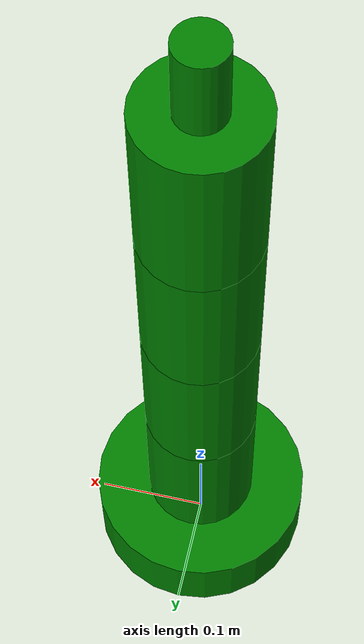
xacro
<?xml version="1.0"?>
<robot xmlns:xacro="http://www.ros.org/wiki/xacro">

    <material name="green" ><color rgba="0 0.5 0 1" /></material>
    <material name="gray" ><color rgba="0.5 0.5 0.5 1" /></material>
    <material name="orange" ><color rgba="1 0.5 0 1" /></material>
    <material name="yellow" ><color rgba="1 1 0 1" /></material>

    <link name="base_link">
        <visual><geometry><cylinder radius="0.1" length="0.07"/></geometry><origin xyz="0 0 0.035" rpy="0 0 0"/><material name="green"/></visual>
        <collision><geometry><cylinder radius="0.1" length="0.07"/></geometry><origin xyz="0 0 0.035" rpy="0 0 0"/></collision>
        <inertial><origin xyz="0 0 0" rpy="0 0 0"/><mass value="0.3"/><inertia ixx="0.00029083" ixy="0.0" ixz="0.0" iyy="0.00029083" iyz="0.0" izz="0.0005"/></inertial>
    </link>

    <link name="first_link">
        <visual><geometry><cylinder radius="0.05" length="0.15"/></geometry><origin xyz="0 0 0.075" rpy="0 0 0"/><material name="green"/></visual>
        <collision><geometry><cylinder radius="0.05" length="0.15"/></geometry><origin xyz="0 0 0.075" rpy="0 0 0"/></collision>
        <inertial><origin xyz="0 0 0" rpy="0 0 0"/><mass value="0.1"/><inertia ixx="0.00025" ixy="0.0" ixz="0.0" iyy="0.00025" iyz="0.0" izz="0.000125"/></inertial>
    </link>

    <link name="second_link">
        <visual><geometry><cylinder radius="0.05" length="0.15"/></geometry><origin xyz="0 0 0.075" rpy="0 0 0"/><material name="green"/></visual>
        <collision><geometry><cylinder radius="0.05" length="0.15"/></geometry><origin xyz="0 0 0.075" rpy="0 0 0"/></collision>
        <inertial><origin xyz="0 0 0" rpy="0 0 0"/><mass value="0.1"/><inertia ixx="0.00025" ixy="0.0" ixz="0.0" iyy="0.00025" iyz="0.0" izz="0.000125"/></inertial>
    </link>

    <link name="third_link">
        <visual><geometry><cylinder radius="0.05" length="0.15"/></geometry><origin xyz="0 0 0.075" rpy="0 0 0"/><material name="green"/></visual>
        <collision><geometry><cylinder radius="0.05" length="0.15"/></geometry><origin xyz="0 0 0.075" rpy="0 0 0"/></collision>
        <inertial><origin xyz="0 0 0" rpy="0 0 0"/><mass value="0.1"/><inertia ixx="0.00025" ixy="0.0" ixz="0.0" iyy="0.00025" iyz="0.0" izz="0.000125"/></inertial>
    </link>

    <link name="fourth_link">
        <visual><geometry><cylinder radius="0.05" length="0.15"/></geometry><origin xyz="0 0 0.075" rpy="0 0 0"/><material name="green"/></visual>
        <collision><geometry><cylinder radius="0.05" length="0.15"/></geometry><origin xyz="0 0 0.075" rpy="0 0 0"/></collision>
        <inertial><origin xyz="0 0 0" rpy="0 0 0"/><mass value="0.1"/><inertia ixx="0.00025" ixy="0.0" ixz="0.0" iyy="0.00025" iyz="0.0" izz="0.000125"/></inertial>
    </link>

    <link name="gripper_link">
        <visual><geometry><cylinder radius="0.02" length="0.07"/></geometry><origin xyz="0 0 0.035" rpy="0 0 0"/><material name="green"/></visual>
        <collision><geometry><cylinder radius="0.02" length="0.07"/></geometry><origin xyz="0 0 0.035" rpy="0 0 0"/></collision>
        <inertial><origin xyz="0 0 0" rpy="0 0 0"/><mass value="0.1"/><inertia ixx="0.00005083" ixy="0.0" ixz="0.0" iyy="0.00005083" iyz="0.0" izz="0.00002"/></inertial>
    </link>

    <link name="base_footprint"/>

    <joint name="footprint_joint" type="fixed">
        <parent link="base_footprint"/>
        <child link="base_link"/>
        <origin xyz="0 0 0" rpy="0 0 0"/>
    </joint>

    <joint name="first_joint" type="revolute">
        <parent link="base_link" /><child link="first_link" /><origin xyz="0 0 0.07" rpy="0 0 0" /><axis xyz="0 0 1" />
        <limit lower="${-pi/4}" upper="${pi/4}" effort="100" velocity="100" /><dynamics friction="0.3" damping="0.3"/>
    </joint>

    <joint name="second_joint" type="revolute">
        <parent link="first_link" /><child link="second_link" /><origin xyz="0 0 0.15" rpy="0 0 0" /><axis xyz="0 1 0" />
        <limit lower="0" upper="${pi/2}" effort="100" velocity="100" /><dynamics friction="0.3" damping="0.3"/>
    </joint>

    <joint name="third_joint" type="revolute">
        <parent link="second_link" /><child link="third_link" /><origin xyz="0 0 0.15" rpy="0 0 0" /><axis xyz="0 1 0" />
        <limit lower="0" upper="${pi/2}" effort="100" velocity="100" /><dynamics friction="0.3" damping="0.3"/>
    </joint>

    <joint name="fourth_joint" type="revolute">
        <parent link="third_link" /><child link="fourth_link" /><origin xyz="0 0 0.15" rpy="0 0 0" /><axis xyz="0 1 0" />
        <limit lower="0" upper="${pi/2}" effort="100" velocity="100" /><dynamics friction="0.3" damping="0.3"/>
    </joint>

    <joint name="gripper_joint" type="continuous">
        <parent link="fourth_link" /><child link="gripper_link" /><origin xyz="0 0 0.15" rpy="0 0 0" /><axis xyz="0 0 1" />
        <dynamics friction="0.3" damping="0.3"/>
    </joint>
    <!-- Joint limit enforcement for Gazebo -->
    <gazebo reference="first_joint">
        <implicitSpringDamper>true</implicitSpringDamper>
        <stopCfm>0.0</stopCfm>
        <stopErp>0.9</stopErp>
    </gazebo>

    <gazebo reference="second_joint">
        <implicitSpringDamper>true</implicitSpringDamper>
        <stopCfm>0.0</stopCfm>
        <stopErp>0.9</stopErp>
    </gazebo>

    <gazebo reference="third_joint">
        <implicitSpringDamper>true</implicitSpringDamper>
        <stopCfm>0.0</stopCfm>
        <stopErp>0.9</stopErp>
    </gazebo>

    <gazebo reference="fourth_joint">
        <implicitSpringDamper>true</implicitSpringDamper>
        <stopCfm>0.0</stopCfm>
        <stopErp>0.9</stopErp>
    </gazebo>

    <gazebo reference="gripper_joint">
        <implicitSpringDamper>true</implicitSpringDamper>
        <stopCfm>0.0</stopCfm>
        <stopErp>0.9</stopErp>
    </gazebo>
</robot>
